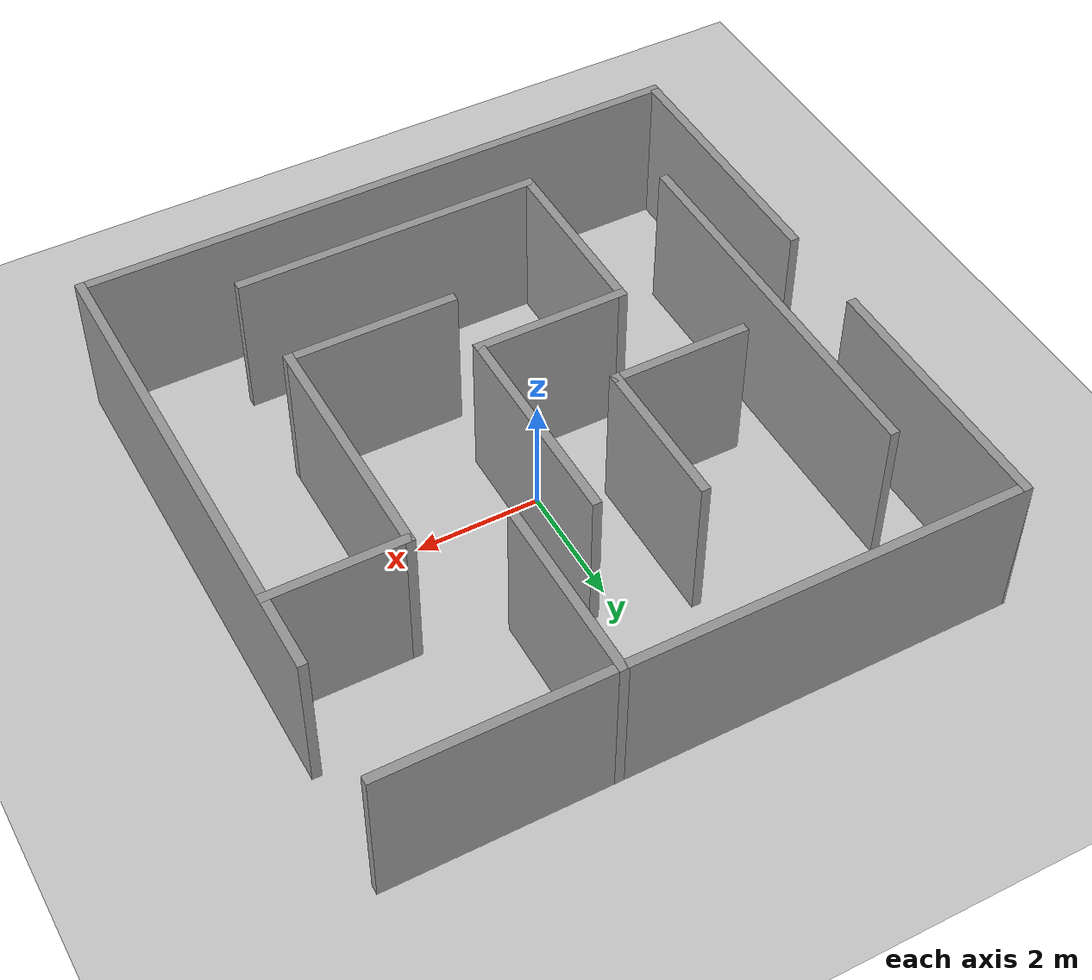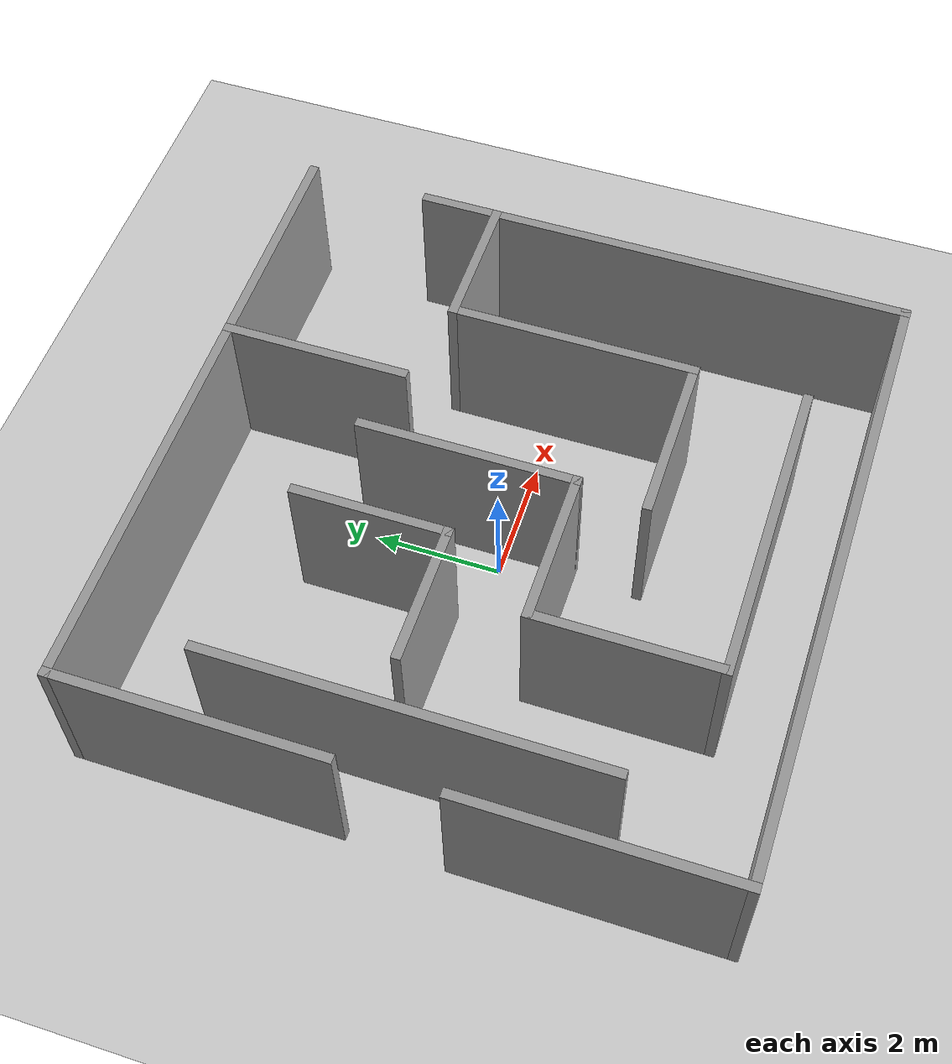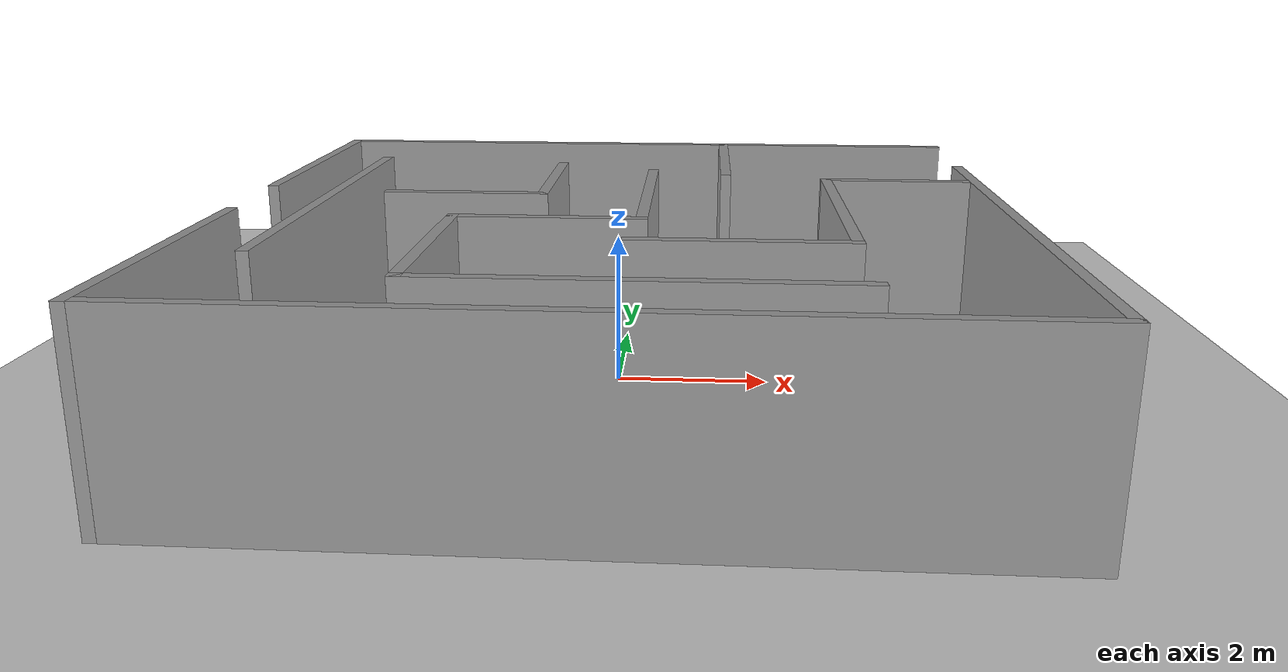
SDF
<sdf version="1.7">
 <world name="default">
  <light name="sun" type="directional">
   <pose>0 0 10 0 -0 0</pose>
   <diffuse>0.8 0.8 0.8 1</diffuse>
   <specular>0.2 0.2 0.2 1</specular>
   <attenuation>
    <range>1000</range>
    <constant>0.9</constant>
    <linear>0.01</linear>
    <quadratic>0.001</quadratic>
   </attenuation>
   <direction>-0.5 0.1 -0.9</direction>
   <spot><inner_angle>0</inner_angle><outer_angle>0</outer_angle><falloff>0</falloff></spot>
  </light>
  <model name="ground_plane">
   <static>1</static>
   <link name="link">
    <collision name="collision">
     <geometry><plane><normal>0 0 1</normal><size>100 100</size></plane></geometry>
     <surface>
      <contact><collide_bitmask>65535</collide_bitmask></contact>
      <friction><ode><mu>100</mu><mu2>50</mu2></ode></friction>
     </surface>
    </collision>
    <visual name="visual">
     <cast_shadows>0</cast_shadows>
     <geometry><plane><normal>0 0 1</normal><size>100 100</size></plane></geometry>
     <material>
      <script><uri>file://media/materials/scripts/gazebo.material</uri><name>Gazebo/Grey</name></script>
     </material>
    </visual>
   </link>
  </model>
  <gravity>0 0 -9.8</gravity>
  <magnetic_field>6e-06 2.3e-05 -4.2e-05</magnetic_field>
  <atmosphere type="adiabatic"/>
  <physics type="ode">
   <max_step_size>0.001</max_step_size>
   <real_time_factor>1</real_time_factor>
   <real_time_update_rate>1000</real_time_update_rate>
  </physics>
  <scene><ambient>0.4 0.4 0.4 1</ambient><background>0.7 0.7 0.7 1</background><shadows>1</shadows></scene>
  <spherical_coordinates>
   <surface_model>EARTH_WGS84</surface_model>
   <latitude_deg>0</latitude_deg>
   <longitude_deg>0</longitude_deg>
   <elevation>0</elevation>
   <heading_deg>0</heading_deg>
  </spherical_coordinates>
  <model name="test_maze">
   <pose>0.03969 -0.082192 0 0 -0 0</pose>
   <link name="Wall_1">
    <collision name="Wall_1_Collision">
     <geometry><box><size>10 0.15 2.5</size></box></geometry>
     <pose>0 0 1.25 0 -0 0</pose>
    </collision>
    <visual name="Wall_1_Visual">
     <pose>0 0 1.25 0 -0 0</pose>
     <geometry><box><size>10 0.15 2.5</size></box></geometry>
     <material>
      <script><uri>file://media/materials/scripts/gazebo.material</uri><name>Gazebo/Grey</name></script>
      <ambient>1 1 1 1</ambient>
     </material>
     <meta><layer>0</layer></meta>
    </visual>
    <pose>0 -4.92574 0 0 -0 0</pose>
   </link>
   <link name="Wall_10">
    <collision name="Wall_10_Collision">
     <geometry><box><size>3.5 0.15 2.5</size></box></geometry>
     <pose>0 0 1.25 0 -0 0</pose>
    </collision>
    <visual name="Wall_10_Visual">
     <pose>0 0 1.25 0 -0 0</pose>
     <geometry><box><size>3.5 0.15 2.5</size></box></geometry>
     <material>
      <script><uri>file://media/materials/scripts/gazebo.material</uri><name>Gazebo/Grey</name></script>
      <ambient>1 1 1 1</ambient>
     </material>
     <meta><layer>0</layer></meta>
    </visual>
    <pose>0.324817 0.677595 0 0 -0 1.5708</pose>
   </link>
   <link name="Wall_12">
    <collision name="Wall_12_Collision">
     <geometry><box><size>2.25 0.15 2.5</size></box></geometry>
     <pose>0 0 1.25 0 -0 0</pose>
    </collision>
    <visual name="Wall_12_Visual">
     <pose>0 0 1.25 0 -0 0</pose>
     <geometry><box><size>2.25 0.15 2.5</size></box></geometry>
     <material>
      <script><uri>file://media/materials/scripts/gazebo.material</uri><name>Gazebo/Grey</name></script>
      <ambient>1 1 1 1</ambient>
     </material>
     <meta><layer>0</layer></meta>
    </visual>
    <pose>-2.14149 0.490866 0 0 -0 0</pose>
   </link>
   <link name="Wall_14">
    <collision name="Wall_14_Collision">
     <geometry><box><size>2.5 0.15 2.5</size></box></geometry>
     <pose>0 0 1.25 0 -0 0</pose>
    </collision>
    <visual name="Wall_14_Visual">
     <pose>0 0 1.25 0 -0 0</pose>
     <geometry><box><size>2.5 0.15 2.5</size></box></geometry>
     <material>
      <script><uri>file://media/materials/scripts/gazebo.material</uri><name>Gazebo/Grey</name></script>
      <ambient>1 1 1 1</ambient>
     </material>
     <meta><layer>0</layer></meta>
    </visual>
    <pose>-1.09149 1.66587 0 0 -0 1.5708</pose>
   </link>
   <link name="Wall_16">
    <collision name="Wall_16_Collision">
     <geometry><box><size>5.0007 0.15 2.5</size></box></geometry>
     <pose>0 0 1.25 0 -0 0</pose>
    </collision>
    <visual name="Wall_16_Visual">
     <pose>0 0 1.25 0 -0 0</pose>
     <geometry><box><size>5.0007 0.15 2.5</size></box></geometry>
     <material>
      <script><uri>file://media/materials/scripts/gazebo.material</uri><name>Gazebo/Grey</name></script>
      <ambient>1 1 1 1</ambient>
     </material>
     <meta><layer>0</layer></meta>
    </visual>
    <pose>0.399817 -3.84741 0 0 -0 0</pose>
   </link>
   <link name="Wall_18">
    <collision name="Wall_18_Collision">
     <geometry><box><size>2.25 0.15 2.5</size></box></geometry>
     <pose>0 0 1.25 0 -0 0</pose>
    </collision>
    <visual name="Wall_18_Visual">
     <pose>0 0 1.25 0 -0 0</pose>
     <geometry><box><size>2.25 0.15 2.5</size></box></geometry>
     <material>
      <script><uri>file://media/materials/scripts/gazebo.material</uri><name>Gazebo/Grey</name></script>
      <ambient>1 1 1 1</ambient>
     </material>
     <meta><layer>0</layer></meta>
    </visual>
    <pose>3.87482 1.75259 0 0 -0 0</pose>
   </link>
   <link name="Wall_2">
    <collision name="Wall_2_Collision">
     <geometry><box><size>8 0.15 2.5</size></box></geometry>
     <pose>0 0 1.25 0 -0 0</pose>
    </collision>
    <visual name="Wall_2_Visual">
     <pose>0 0 1.25 0 -0 0</pose>
     <geometry><box><size>8 0.15 2.5</size></box></geometry>
     <material>
      <script><uri>file://media/materials/scripts/gazebo.material</uri><name>Gazebo/Grey</name></script>
      <ambient>1 1 1 1</ambient>
     </material>
     <meta><layer>0</layer></meta>
    </visual>
    <pose>4.925 -1.00074 0 0 -0 1.5708</pose>
   </link>
   <link name="Wall_20">
    <collision name="Wall_20_Collision">
     <geometry><box><size>4 0.15 2.5</size></box></geometry>
     <pose>0 0 1.25 0 -0 0</pose>
    </collision>
    <visual name="Wall_20_Visual">
     <pose>0 0 1.25 0 -0 0</pose>
     <geometry><box><size>4 0.15 2.5</size></box></geometry>
     <material>
      <script><uri>file://media/materials/scripts/gazebo.material</uri><name>Gazebo/Grey</name></script>
      <ambient>1 1 1 1</ambient>
     </material>
     <meta><layer>0</layer></meta>
    </visual>
    <pose>2.82482 -0.172405 0 0 -0 -1.5708</pose>
   </link>
   <link name="Wall_21">
    <collision name="Wall_21_Collision">
     <geometry><box><size>2.75 0.15 2.5</size></box></geometry>
     <pose>0 0 1.25 0 -0 0</pose>
    </collision>
    <visual name="Wall_21_Visual">
     <pose>0 0 1.25 0 -0 0</pose>
     <geometry><box><size>2.75 0.15 2.5</size></box></geometry>
     <material>
      <script><uri>file://media/materials/scripts/gazebo.material</uri><name>Gazebo/Grey</name></script>
      <ambient>1 1 1 1</ambient>
     </material>
     <meta><layer>0</layer></meta>
    </visual>
    <pose>1.52482 -2.09741 0 0 -0 3.14159</pose>
   </link>
   <link name="Wall_24">
    <collision name="Wall_24_Collision">
     <geometry><box><size>3 0.15 2.5</size></box></geometry>
     <pose>0 0 1.25 0 -0 0</pose>
    </collision>
    <visual name="Wall_24_Visual">
     <pose>0 0 1.25 0 -0 0</pose>
     <geometry><box><size>3 0.15 2.5</size></box></geometry>
     <material>
      <script><uri>file://media/materials/scripts/gazebo.material</uri><name>Gazebo/Grey</name></script>
      <ambient>1 1 1 1</ambient>
     </material>
     <meta><layer>0</layer></meta>
    </visual>
    <pose>1.39679 3.50074 0 0 -0 -1.5708</pose>
   </link>
   <link name="Wall_26">
    <collision name="Wall_26_Collision">
     <geometry><box><size>4.25 0.15 2.5</size></box></geometry>
     <pose>0 0 1.25 0 -0 0</pose>
    </collision>
    <visual name="Wall_26_Visual">
     <pose>0 0 1.25 0 -0 0</pose>
     <geometry><box><size>4.25 0.15 2.5</size></box></geometry>
     <material>
      <script><uri>file://media/materials/scripts/gazebo.material</uri><name>Gazebo/Grey</name></script>
      <ambient>1 1 1 1</ambient>
     </material>
     <meta><layer>0</layer></meta>
    </visual>
    <pose>-4.925 2.87426 0 0 -0 -1.5708</pose>
   </link>
   <link name="Wall_28">
    <collision name="Wall_28_Collision">
     <geometry><box><size>4.25 0.15 2.5</size></box></geometry>
     <pose>0 0 1.25 0 -0 0</pose>
    </collision>
    <visual name="Wall_28_Visual">
     <pose>0 0 1.25 0 -0 0</pose>
     <geometry><box><size>4.25 0.15 2.5</size></box></geometry>
     <material>
      <script><uri>file://media/materials/scripts/gazebo.material</uri><name>Gazebo/Grey</name></script>
      <ambient>1 1 1 1</ambient>
     </material>
     <meta><layer>0</layer></meta>
    </visual>
    <pose>-4.925 -2.87574 0 0 -0 1.5708</pose>
   </link>
   <link name="Wall_4">
    <collision name="Wall_4_Collision">
     <geometry><box><size>10 0.15 2.5</size></box></geometry>
     <pose>0 0 1.25 0 -0 0</pose>
    </collision>
    <visual name="Wall_4_Visual">
     <pose>0 0 1.25 0 -0 0</pose>
     <geometry><box><size>10 0.15 2.5</size></box></geometry>
     <material>
      <script><uri>file://media/materials/scripts/gazebo.material</uri><name>Gazebo/Grey</name></script>
      <ambient>1 1 1 1</ambient>
     </material>
     <meta><layer>0</layer></meta>
    </visual>
    <pose>0 4.92426 0 0 -0 0</pose>
   </link>
   <link name="Wall_6">
    <collision name="Wall_6_Collision">
     <geometry><box><size>6.25 0.15 2.5</size></box></geometry>
     <pose>0 0 1.25 0 -0 0</pose>
    </collision>
    <visual name="Wall_6_Visual">
     <pose>0 0 1.25 0 -0 0</pose>
     <geometry><box><size>6.25 0.15 2.5</size></box></geometry>
     <material>
      <script><uri>file://media/materials/scripts/gazebo.material</uri><name>Gazebo/Grey</name></script>
      <ambient>1 1 1 1</ambient>
     </material>
     <meta><layer>0</layer></meta>
    </visual>
    <pose>-3.94149 0.151065 0 0 -0 -1.5708</pose>
   </link>
   <link name="Wall_8">
    <collision name="Wall_8_Collision">
     <geometry><box><size>3 0.15 2.5</size></box></geometry>
     <pose>0 0 1.25 0 -0 0</pose>
    </collision>
    <visual name="Wall_8_Visual">
     <pose>0 0 1.25 0 -0 0</pose>
     <geometry><box><size>3 0.15 2.5</size></box></geometry>
     <material>
      <script><uri>file://media/materials/scripts/gazebo.material</uri><name>Gazebo/Grey</name></script>
      <ambient>1 1 1 1</ambient>
     </material>
     <meta><layer>0</layer></meta>
    </visual>
    <pose>-2.02518 -2.4224 0 0 -0 1.5708</pose>
   </link>
   <link name="Wall_9">
    <collision name="Wall_9_Collision">
     <geometry><box><size>2.5 0.15 2.5</size></box></geometry>
     <pose>0 0 1.25 0 -0 0</pose>
    </collision>
    <visual name="Wall_9_Visual">
     <pose>0 0 1.25 0 -0 0</pose>
     <geometry><box><size>2.5 0.15 2.5</size></box></geometry>
     <material>
      <script><uri>file://media/materials/scripts/gazebo.material</uri><name>Gazebo/Grey</name></script>
      <ambient>1 1 1 1</ambient>
     </material>
     <meta><layer>0</layer></meta>
    </visual>
    <pose>-0.850183 -0.997405 0 0 -0 0</pose>
   </link>
   <static>1</static>
  </model>
 </world>
</sdf>
